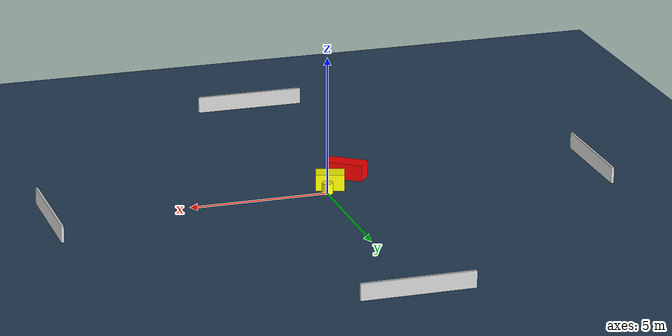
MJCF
<?xml version="1.0" ?>
<mujoco model="generated_environment">
  <option timestep="0.01" integrator="RK4" cone="elliptic"/>
  <default>
    <geom density="1"/>
  </default>
  <asset>
    <texture builtin="gradient" height="3072" name="skybox" rgb1="0.3 0.5 0.7" rgb2="0 0 0" type="skybox" width="512"/>
    <texture builtin="checker" height="300" name="groundplane" rgb1="0.2 0.3 0.4" rgb2="0.1 0.2 0.3" type="2d" width="300"/>
    <material name="groundplane" reflectance="0.2" texrepeat="5 5" texture="groundplane"/>
  </asset>
  <worldbody>
    <light dir="0 0 -1" directional="true" pos="0 0 1.5"/>
    <geom condim="3" friction="0.5 0.005 0.001" material="groundplane" name="floor" pos="0 0 0" size="0 0 0.05" type="plane"/>
    <body name="walls">
      <geom name="wall_1" condim="4" pos="-10.0 0.0 0.3" rgba="0.800000011920929 0.800000011920929 0.800000011920929 1.0" size="0.05 2.0 0.3" type="box"/>
      <geom name="wall_2" condim="4" pos="10.0 0.0 0.3" rgba="0.800000011920929 0.800000011920929 0.800000011920929 1.0" size="0.05 2.0 0.3" type="box"/>
      <geom name="wall_3" condim="4" pos="0.0 -10.0 0.3" rgba="0.800000011920929 0.800000011920929 0.800000011920929 1.0" size="2.0 0.05 0.3" type="box"/>
      <geom name="wall_4" condim="4" pos="0.0 10.0 0.3" rgba="0.800000011920929 0.800000011920929 0.800000011920929 1.0" size="2.0 0.05 0.3" type="box"/>
    </body>
    <body name="robot">
      <joint name="joint_x" type="slide" pos="0 0 0" axis="1 0 0"/>
      <joint name="joint_y" type="slide" pos="0 0 0" axis="0 1 0"/>
      <geom name="robot" type="cylinder" pos="0.0 0.0 0.2" size="0.2 0.2 0.0" mass="5.0" friction="1.0 0.005 0.0001" condim="4" rgba="1.0 1.0 0.0 1.0"/>
    </body>
    <body name="obstacle_1_movable">
      <geom name="obstacle_1_movable" condim="4" pos="-0.2624963691107006 -0.5174210880785142 0.3" euler="0 0 72.92939647803156" friction="0.0 0.005 0.001" rgba="1.0 1.0 0.0 1.0" size="0.3216735875813211 0.5082244190973939 0.3" type="box" mass="0.1"/>
      <joint type="free"/>
    </body>
    <body name="obstacle_2_static">
      <geom name="obstacle_2_static" condim="4" pos="-1.1613689059449739 -1.4524286771494073 0.3" euler="0 0 323.97086288251467" friction="0.0 0.005 0.001" rgba="1.0 0.0 0.0 1.0" size="0.6923739029972141 0.32594934934760905 0.3" type="box"/>
    </body>
  </worldbody>
  <actuator>
    <motor name="actuator_x" joint="joint_x" gear="1" ctrlrange="-1 1"/>
    <motor name="actuator_y" joint="joint_y" gear="1" ctrlrange="-1 1"/>
  </actuator>
</mujoco>
